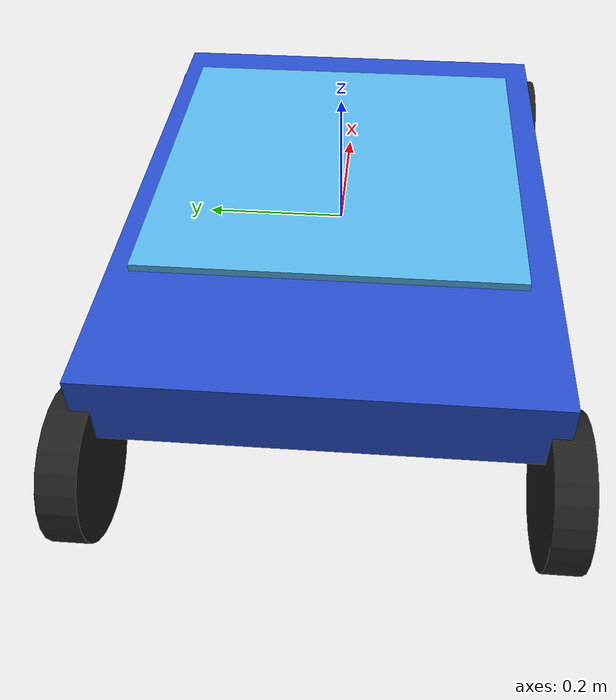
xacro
<?xml version="1.0"?>
<robot name="ground_robot" xmlns:xacro="http://ros.org/wiki/xacro">
  <xacro:property name="wheel_radius" value="0.1"/>
  <xacro:property name="wheel_width" value="0.05"/>
  <xacro:property name="base_width" value="0.6"/>
  <xacro:property name="base_length" value="0.8"/>
  <xacro:property name="base_height" value="0.1"/>

  <xacro:property name="wheel_z_offset" value="${wheel_radius}"/>

  <!-- Base link -->
  <link name="base_link">
    <visual>
      <geometry >
        <box size="${base_length} ${base_width} ${base_height}" />
      </geometry>

      <material name="blue"/>
    </visual>
    <collision>
      <geometry>
        <box size="${base_length} ${base_width} ${base_height}"/>
      </geometry>
    </collision>
    <inertial>
      <mass value="0.5"/>
      <origin xyz="${base_length/2} 0 0" rpy="0 0 0"/>
      <inertia ixx="0.1" ixy="0.0" ixz="0.0" iyy="0.1" iyz="0.0" izz="0.1"/>
    </inertial>
  </link>
      <link name="marker">
        <inertial>
            <origin xyz="0.0 0.0 0.0" rpy="0.0 0.0 0.0" />
            <mass value="0.0001" />
            <inertia ixx="0.00" ixy="0.0" ixz="0.0" iyy="0.0" iyz="0.0" izz="0.0001" />
        </inertial>
         <visual name="marker">
            <origin rpy="0.0 -1.570796327 0.0" />
            <geometry>
                <mesh filename="$(find robots_description)/meshes/Marker0.obj" scale="1.0 1.0 1.0" />
            </geometry>
        </visual>
    </link>
  <joint name="aruco" type="fixed">
     <parent link="base_link"/>
      <child link="marker"/>
      <origin xyz="0 -${base_width/2-0.05} ${base_height/2+0.05}" rpy="0 0 0"/>
  </joint>

  <!-- Wheels -->
  <xacro:macro name="wheel" params="name x y z">
    <link name="${name}">
      <visual>
        <geometry>
          <cylinder radius="${wheel_radius}" length="${wheel_width}"/>
        </geometry>
        <material name="black"/>
      </visual>
      <collision>
        <geometry>
          <cylinder radius="${wheel_radius}" length="${wheel_width}"/>
        </geometry>
      </collision>
      <inertial>
        <mass value="0.1"/>
        <origin xyz="0 0 0" rpy="0 0 0"/>
        <inertia ixx="0.01" ixy="0.0" ixz="0.0" iyy="0.01" iyz="0.0" izz="0.01"/>
      </inertial>
    </link>
    <joint name="${name}_joint" type="continuous">
      <parent link="base_link"/>
      <child link="${name}"/>
      <origin xyz="${x} ${y} ${z}" rpy="1.5708 0 0"/>
      <axis xyz="0 0 -1"/>
    </joint>
  </xacro:macro>

  <xacro:wheel name="wheel_front_left" x="${base_length/2}" y="${base_width/2}" z="-${wheel_radius}"/>
  <xacro:wheel name="wheel_front_right" x="${base_length/2}" y="-${base_width/2}" z="-${wheel_radius}"/>
  <xacro:wheel name="wheel_back_left" x="-${base_length/2}" y="${base_width/2}" z="-${wheel_radius}"/>
  <xacro:wheel name="wheel_back_right" x="-${base_length/2}" y="-${base_width/2}" z="-${wheel_radius}"/>

  <!-- Differential Drive Plugin -->

  <gazebo>
    <plugin name="wheel_drive_controller" filename="libgazebo_ros_diff_drive.so">
        <!-- wheels -->
        <num_wheel_pairs>2</num_wheel_pairs>
        <left_joint>wheel_front_left_joint</left_joint>
        <right_joint>wheel_front_right_joint</right_joint>
        <left_joint>wheel_back_left_joint</left_joint>
        <right_joint>wheel_back_right_joint</right_joint>

        <!-- kinematics -->
        <wheel_separation>${base_width}</wheel_separation>
        <wheel_diameter>${wheel_radius * 2}</wheel_diameter>

        <!-- Limits -->
        <max_wheel_torque>200.0</max_wheel_torque>
        <max_wheel_acceleration>10.0</max_wheel_acceleration>

        <!-- Output -->
        <odometry_frame>odom</odometry_frame>
        <robot_base_frame>base_link</robot_base_frame>

        <!-- topic & re remappings -->
        <ros>
            <namespace>/ground_robot</namespace>
            <argument>/cmd_vel:=cmd_vel</argument>
            <argument>/odom:=odom</argument>
        </ros >

        <publish_odom>true</publish_odom>
        <publish_odom_tf>true</publish_odom_tf>
        <update_rate>100.0</update_rate>
    </plugin>
</gazebo>

</robot>
